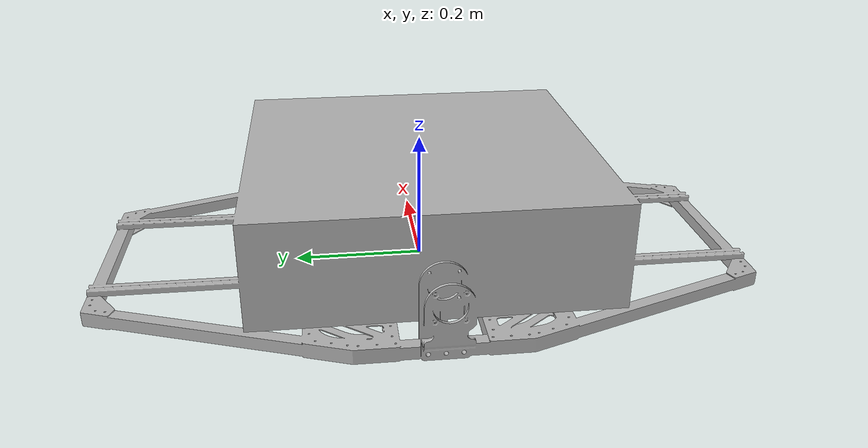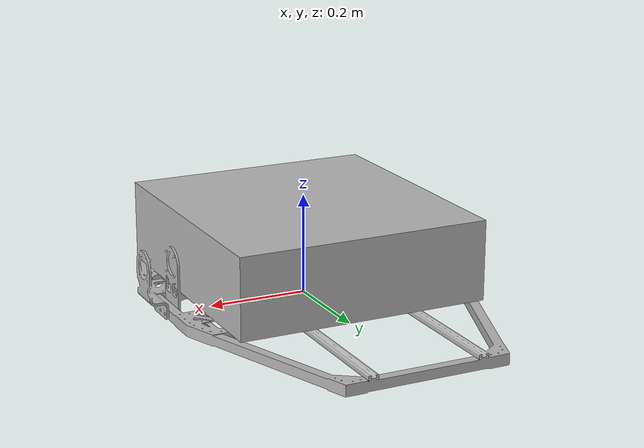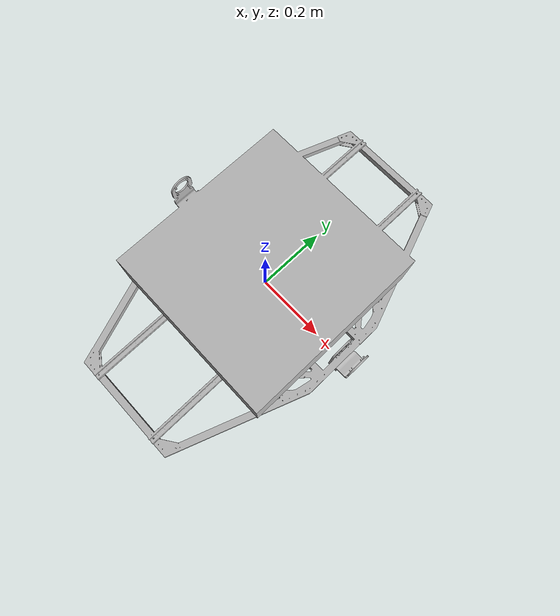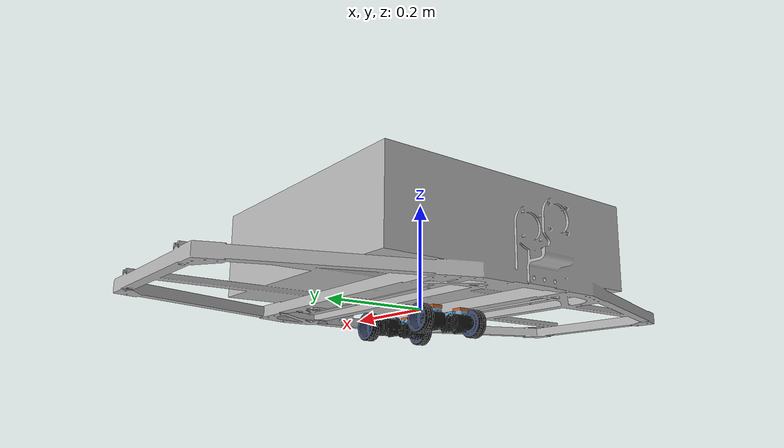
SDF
<sdf version='1.7'>
  <model name='rs_robot'>

    <link name='base_link'>
      <inertial>
        <pose>-0.003143 0 0.022 0 -0 0</pose>
        <mass>1.4</mass>
        <inertia>
          <ixx>0.0004846</ixx>
          <ixy>0</ixy>
          <ixz>0.000132</ixz>
          <iyy>0.000352971</iyy>
          <iyz>0</iyz>
          <izz>0.000339571</izz>
        </inertia>
      </inertial>
      <collision name='base_footprint_fixed_joint_lump__base_link_collision'>
        <pose>0 0 0 0 -0 0</pose>
        <geometry>
          <mesh>
            <scale>1 1 1</scale>
            <uri>model://rs_robot/meshes/STL/base/base_link.stl</uri>
          </mesh>
        </geometry>
        <surface>
          <contact>
            <ode/>
          </contact>
          <friction>
            <ode>
              <mu>0.05</mu>
              <mu2>0.05</mu2>
            </ode>
          </friction>
        </surface>
      </collision>
      <visual name='base_footprint_fixed_joint_lump__base_link_visual'>
        <pose>0 0 0 0 -0 0</pose>
        <geometry>
          <mesh>
            <scale>1 1 1</scale>
            <uri>model://rs_robot/meshes/DAE/base/base_link.dae</uri>
          </mesh>
        </geometry>
      </visual>
    </link>

    <joint name='fl_steering_joint' type='revolute'>
      <pose relative_to='base_link'>0.077 0.031 -0.004 0 -0 0</pose>
      <parent>base_link</parent>
      <child>fl_steering_link</child>
      <axis>
        <xyz>0 0 1</xyz>
        <limit>
          <lower>-2.1</lower>
          <upper>2.1</upper>
          <effort>5</effort>
          <velocity>6.28</velocity>
        </limit>
        <dynamics>
          <damping>0.005</damping>
          <friction>0.02</friction>
          <spring_reference>0</spring_reference>
          <spring_stiffness>0</spring_stiffness>
        </dynamics>
      </axis>
    </joint>
    <link name='fl_steering_link'>
      <pose relative_to='fl_steering_joint'>0 0 0 0 -0 0</pose>
      <inertial>
        <pose>0 0 -0.02 0 -0 0</pose>
        <mass>0.15</mass>
        <inertia>
          <ixx>1e-05</ixx>
          <ixy>0</ixy>
          <ixz>0</ixz>
          <iyy>1e-05</iyy>
          <iyz>0</iyz>
          <izz>4e-06</izz>
        </inertia>
      </inertial>
      <collision name='fl_steering_link_collision'>
        <pose>0 0 0 0 -0 0</pose>
        <geometry>
          <mesh>
            <scale>1 1 1</scale>
            <uri>model://rs_robot/meshes/STL/suspension/sus_link.stl</uri>
          </mesh>
        </geometry>
        <surface>
          <contact>
            <ode/>
          </contact>
          <friction>
            <ode>
              <mu>0.05</mu>
              <mu2>0.05</mu2>
            </ode>
          </friction>
        </surface>
      </collision>
      <visual name='fl_steering_link_visual'>
        <pose>0 0 0 0 -0 0</pose>
        <geometry>
          <mesh>
            <scale>1 1 1</scale>
            <uri>model://rs_robot/meshes/DAE/suspension/front_left_link.dae</uri>
          </mesh>
        </geometry>
      </visual>
      <self_collide>0</self_collide>
    </link>
    <joint name='fl_wheel_joint' type='revolute'>
      <pose relative_to='fl_steering_link'>0 0.021 -0.025 0 0 -3.14159</pose>
      <parent>fl_steering_link</parent>
      <child>fl_wheel_link</child>
      <axis>
        <xyz>0 -1 0</xyz>
        <limit>
          <effort>1.5</effort>
          <velocity>20</velocity>
          <lower>-1e+16</lower>
          <upper>1e+16</upper>
        </limit>
        <dynamics>
          <damping>0.005</damping>
          <friction>0.02</friction>
          <spring_reference>0</spring_reference>
          <spring_stiffness>0</spring_stiffness>
        </dynamics>
      </axis>
    </joint>
    <link name='fl_wheel_link'>
      <pose relative_to='fl_wheel_joint'>0 0 0 0 -0 0</pose>
      <inertial>
        <pose>0 -0.007 0 0 -0 0</pose>
        <mass>0.05</mass>
        <inertia>
          <ixx>1e-05</ixx>
          <ixy>0</ixy>
          <ixz>0</ixz>
          <iyy>1.8e-05</iyy>
          <iyz>0</iyz>
          <izz>1e-05</izz>
        </inertia>
      </inertial>
      <collision name='fl_wheel_link_collision'>
        <pose>0 0 0 0 -0 0</pose>
        <geometry>
          <mesh>
            <scale>1 1 1</scale>
            <uri>model://rs_robot/meshes/STL/wheel/robot_wheel.stl</uri>
          </mesh>
        </geometry>
      </collision>
      <visual name='fl_wheel_link_visual'>
        <pose>0 0 0 0 -0 0</pose>
        <geometry>
          <mesh>
            <scale>1 1 1</scale>
            <uri>model://rs_robot/meshes/DAE/wheel/wheel_link.dae</uri>
          </mesh>
        </geometry>
      </visual>
    </link>
    <joint name='fr_steering_joint' type='revolute'>
      <pose relative_to='base_link'>0.077 -0.031 -0.004 0 -0 0</pose>
      <parent>base_link</parent>
      <child>fr_steering_link</child>
      <axis>
        <xyz>0 0 1</xyz>
        <limit>
          <lower>-2.1</lower>
          <upper>2.1</upper>
          <effort>5</effort>
          <velocity>6.28</velocity>
        </limit>
        <dynamics>
          <damping>0.005</damping>
          <friction>0.02</friction>
          <spring_reference>0</spring_reference>
          <spring_stiffness>0</spring_stiffness>
        </dynamics>
      </axis>
    </joint>
    <link name='fr_steering_link'>
      <pose relative_to='fr_steering_joint'>0 0 0 0 -0 0</pose>
      <inertial>
        <pose>0 0 -0.02 0 -0 0</pose>
        <mass>0.15</mass>
        <inertia>
          <ixx>1e-05</ixx>
          <ixy>0</ixy>
          <ixz>0</ixz>
          <iyy>1e-05</iyy>
          <iyz>0</iyz>
          <izz>4e-06</izz>
        </inertia>
      </inertial>
      <collision name='fr_steering_link_collision'>
        <pose>0 0 0 0 -0 0</pose>
        <geometry>
          <mesh>
            <scale>1 1 1</scale>
            <uri>model://rs_robot/meshes/STL/suspension/sus_link.stl</uri>
          </mesh>
        </geometry>
        <surface>
          <contact>
            <ode/>
          </contact>
          <friction>
            <ode>
              <mu>0.05</mu>
              <mu2>0.05</mu2>
            </ode>
          </friction>
        </surface>
      </collision>
      <visual name='fr_steering_link_visual'>
        <pose>0 0 0 0 -0 0</pose>
        <geometry>
          <mesh>
            <scale>1 1 1</scale>
            <uri>model://rs_robot/meshes/DAE/suspension/front_right_link.dae</uri>
          </mesh>
        </geometry>
      </visual>
      <self_collide>0</self_collide>
    </link>
    <joint name='fr_wheel_joint' type='revolute'>
      <pose relative_to='fr_steering_link'>0 -0.021 -0.025 0 -0 0</pose>
      <parent>fr_steering_link</parent>
      <child>fr_wheel_link</child>
      <axis>
        <xyz>0 1 0</xyz>
        <limit>
          <effort>1.5</effort>
          <velocity>20</velocity>
          <lower>-1e+16</lower>
          <upper>1e+16</upper>
        </limit>
        <dynamics>
          <damping>0.005</damping>
          <friction>0.02</friction>
          <spring_reference>0</spring_reference>
          <spring_stiffness>0</spring_stiffness>
        </dynamics>
      </axis>
    </joint>
    <link name='fr_wheel_link'>
      <pose relative_to='fr_wheel_joint'>0 0 0 0 -0 0</pose>
      <inertial>
        <pose>0 -0.007 0 0 -0 0</pose>
        <mass>0.05</mass>
        <inertia>
          <ixx>1e-05</ixx>
          <ixy>0</ixy>
          <ixz>0</ixz>
          <iyy>1.8e-05</iyy>
          <iyz>0</iyz>
          <izz>1e-05</izz>
        </inertia>
      </inertial>
      <collision name='fr_wheel_link_collision'>
        <pose>0 0 0 0 -0 0</pose>
        <geometry>
          <mesh>
            <scale>1 1 1</scale>
            <uri>model://rs_robot/meshes/STL/wheel/robot_wheel.stl</uri>
          </mesh>
        </geometry>
      </collision>
      <visual name='fr_wheel_link_visual'>
        <pose>0 0 0 0 -0 0</pose>
        <geometry>
          <mesh>
            <scale>1 1 1</scale>
            <uri>model://rs_robot/meshes/DAE/wheel/wheel_link.dae</uri>
          </mesh>
        </geometry>
      </visual>
    </link>

    <joint name='rl_steering_joint' type='revolute'>
      <pose relative_to='base_link'>-0.077 0.031 -0.004 0 -0 0</pose>
      <parent>base_link</parent>
      <child>rl_steering_link</child>
      <axis>
        <xyz>0 0 1</xyz>
        <limit>
          <lower>-2.1</lower>
          <upper>2.1</upper>
          <effort>5</effort>
          <velocity>6.28</velocity>
        </limit>
        <dynamics>
          <damping>0.005</damping>
          <friction>0.02</friction>
          <spring_reference>0</spring_reference>
          <spring_stiffness>0</spring_stiffness>
        </dynamics>
      </axis>
    </joint>
    <link name='rl_steering_link'>
      <pose relative_to='rl_steering_joint'>0 0 0 0 -0 0</pose>
      <inertial>
        <pose>0 0 -0.02 0 -0 0</pose>
        <mass>0.15</mass>
        <inertia>
          <ixx>1e-05</ixx>
          <ixy>0</ixy>
          <ixz>0</ixz>
          <iyy>1e-05</iyy>
          <iyz>0</iyz>
          <izz>4e-06</izz>
        </inertia>
      </inertial>
      <collision name='rl_steering_link_collision'>
        <pose>0 0 0 0 -0 0</pose>
        <geometry>
          <mesh>
            <scale>1 1 1</scale>
            <uri>model://rs_robot/meshes/STL/suspension/sus_link.stl</uri>
          </mesh>
        </geometry>
        <surface>
          <contact>
            <ode/>
          </contact>
          <friction>
            <ode>
              <mu>0.05</mu>
              <mu2>0.05</mu2>
            </ode>
          </friction>
        </surface>
      </collision>
      <visual name='rl_steering_link_visual'>
        <pose>0 0 0 0 -0 0</pose>
        <geometry>
          <mesh>
            <scale>1 1 1</scale>
            <uri>model://rs_robot/meshes/DAE/suspension/rear_left_link.dae</uri>
          </mesh>
        </geometry>
      </visual>
      <self_collide>0</self_collide>
    </link>
    <joint name='rl_wheel_joint' type='revolute'>
      <pose relative_to='rl_steering_link'>0 0.021 -0.025 0 0 -3.14159</pose>
      <parent>rl_steering_link</parent>
      <child>rl_wheel_link</child>
      <axis>
        <xyz>0 -1 0</xyz>
        <limit>
          <effort>1.5</effort>
          <velocity>20</velocity>
          <lower>-1e+16</lower>
          <upper>1e+16</upper>
        </limit>
        <dynamics>
          <damping>0.005</damping>
          <friction>0.02</friction>
          <spring_reference>0</spring_reference>
          <spring_stiffness>0</spring_stiffness>
        </dynamics>
      </axis>
    </joint>
    <link name='rl_wheel_link'>
      <pose relative_to='rl_wheel_joint'>0 0 0 0 -0 0</pose>
      <inertial>
        <pose>0 -0.007 0 0 -0 0</pose>
        <mass>0.05</mass>
        <inertia>
          <ixx>1e-05</ixx>
          <ixy>0</ixy>
          <ixz>0</ixz>
          <iyy>1.8e-05</iyy>
          <iyz>0</iyz>
          <izz>1e-05</izz>
        </inertia>
      </inertial>
      <collision name='rl_wheel_link_collision'>
        <pose>0 0 0 0 -0 0</pose>
        <geometry>
          <mesh>
            <scale>1 1 1</scale>
            <uri>model://rs_robot/meshes/STL/wheel/robot_wheel.stl</uri>
          </mesh>
        </geometry>
      </collision>
      <visual name='rl_wheel_link_visual'>
        <pose>0 0 0 0 -0 0</pose>
        <geometry>
          <mesh>
            <scale>1 1 1</scale>
            <uri>model://rs_robot/meshes/DAE/wheel/wheel_link.dae</uri>
          </mesh>
        </geometry>
      </visual>
    </link>
    <joint name='rr_steering_joint' type='revolute'>
      <pose relative_to='base_link'>-0.077 -0.031 -0.004 0 -0 0</pose>
      <parent>base_link</parent>
      <child>rr_steering_link</child>
      <axis>
        <xyz>0 0 1</xyz>
        <limit>
          <lower>-2.1</lower>
          <upper>2.1</upper>
          <effort>5</effort>
          <velocity>6.28</velocity>
        </limit>
        <dynamics>
          <damping>0.005</damping>
          <friction>0.02</friction>
          <spring_reference>0</spring_reference>
          <spring_stiffness>0</spring_stiffness>
        </dynamics>
      </axis>
    </joint>
    <link name='rr_steering_link'>
      <pose relative_to='rr_steering_joint'>0 0 0 0 -0 0</pose>
      <inertial>
        <pose>0 0 -0.02 0 -0 0</pose>
        <mass>0.15</mass>
        <inertia>
          <ixx>1e-05</ixx>
          <ixy>0</ixy>
          <ixz>0</ixz>
          <iyy>1e-05</iyy>
          <iyz>0</iyz>
          <izz>4e-06</izz>
        </inertia>
      </inertial>
      <collision name='rr_steering_link_collision'>
        <pose>0 0 0 0 -0 0</pose>
        <geometry>
          <mesh>
            <scale>1 1 1</scale>
            <uri>model://rs_robot/meshes/STL/suspension/sus_link.stl</uri>
          </mesh>
        </geometry>
        <surface>
          <contact>
            <ode/>
          </contact>
          <friction>
            <ode>
              <mu>0.05</mu>
              <mu2>0.05</mu2>
            </ode>
          </friction>
        </surface>
      </collision>
      <visual name='rr_steering_link_visual'>
        <pose>0 0 0 0 -0 0</pose>
        <geometry>
          <mesh>
            <scale>1 1 1</scale>
            <uri>model://rs_robot/meshes/DAE/suspension/rear_right_link.dae</uri>
          </mesh>
        </geometry>
      </visual>
      <self_collide>0</self_collide>
    </link>
    <joint name='rr_wheel_joint' type='revolute'>
      <pose relative_to='rr_steering_link'>0 -0.021 -0.025 0 -0 0</pose>
      <parent>rr_steering_link</parent>
      <child>rr_wheel_link</child>
      <axis>
        <xyz>0 1 0</xyz>
        <limit>
          <effort>1.5</effort>
          <velocity>20</velocity>
          <lower>-1e+16</lower>
          <upper>1e+16</upper>
        </limit>
        <dynamics>
          <damping>0.005</damping>
          <friction>0.02</friction>
          <spring_reference>0</spring_reference>
          <spring_stiffness>0</spring_stiffness>
        </dynamics>
      </axis>
    </joint>
    <link name='rr_wheel_link'>
      <pose relative_to='rr_wheel_joint'>0 0 0 0 -0 0</pose>
      <inertial>
        <pose>0 -0.007 0 0 -0 0</pose>
        <mass>0.05</mass>
        <inertia>
          <ixx>1e-05</ixx>
          <ixy>0</ixy>
          <ixz>0</ixz>
          <iyy>1.8e-05</iyy>
          <iyz>0</iyz>
          <izz>1e-05</izz>
        </inertia>
      </inertial>
      <collision name='rr_wheel_link_collision'>
        <pose>0 0 0 0 -0 0</pose>
        <geometry>
          <mesh>
            <scale>1 1 1</scale>
            <uri>model://rs_robot/meshes/STL/wheel/robot_wheel.stl</uri>
          </mesh>
        </geometry>
      </collision>
      <visual name='rr_wheel_link_visual'>
        <pose>0 0 0 0 -0 0</pose>
        <geometry>
          <mesh>
            <scale>1 1 1</scale>
            <uri>model://rs_robot/meshes/DAE/wheel/wheel_link.dae</uri>
          </mesh>
        </geometry>
      </visual>
    </link>

    <static>0</static>

    <plugin name="four_ws_robot_joint_state" filename="libgazebo_ros_joint_state_publisher.so">
      <ros>
          <remapping>~/out:=joint_states</remapping>
      </ros>
      <update_rate>30</update_rate>
      <joint_name>fl_wheel_joint</joint_name>
      <joint_name>fr_wheel_joint</joint_name>
      <joint_name>rl_wheel_joint</joint_name>
      <joint_name>rr_wheel_joint</joint_name>
      <joint_name>fl_steering_joint</joint_name>
      <joint_name>fr_steering_joint</joint_name>
      <joint_name>rl_steering_joint</joint_name>
      <joint_name>rr_steering_joint</joint_name>
    </plugin>

<ros2_control name="GazeboSystem" type="system">
    <hardware>
      <plugin>gazebo_ros2_control/GazeboSystem</plugin>
    </hardware>

    <joint name="fl_wheel_joint">
      <command_interface name="velocity">
        <param name="min">-3.14</param>
        <param name="max">3.14</param>
      </command_interface>
      <state_interface name="velocity"/>
      <state_interface name="effort"/>
    </joint>

    <joint name="fr_wheel_joint">
      <command_interface name="velocity">
        <param name="min">-3.14</param>
        <param name="max">3.14</param>
      </command_interface>
      <state_interface name="velocity"/>
      <state_interface name="effort"/>
    </joint>

    <joint name="rl_wheel_joint">
      <command_interface name="velocity">
        <param name="min">-3.14</param>
        <param name="max">3.14</param>
      </command_interface>
      <state_interface name="velocity"/>
      <state_interface name="effort"/>
    </joint>

    <joint name="rr_wheel_joint">
      <command_interface name="velocity">
        <param name="min">-3.14</param>
        <param name="max">3.14</param>
      </command_interface>
      <state_interface name="velocity"/>
      <state_interface name="effort"/>
    </joint>

    <joint name="fl_steering_joint">
      <command_interface name="position">
        <param name="min">-3.14</param>
        <param name="max">3.14</param>
      </command_interface>
      <state_interface name="position">
        <param name="initial_value">0</param>
      </state_interface>
      <state_interface name="velocity"/>
      <state_interface name="effort"/>
    </joint>

    <joint name="fr_steering_joint">
      <command_interface name="position">
        <param name="min">-3.14</param>
        <param name="max">3.14</param>
      </command_interface>
      <state_interface name="position">
        <param name="initial_value">0</param>
      </state_interface>
      <state_interface name="velocity"/>
      <state_interface name="effort"/>
    </joint>

    <joint name="rl_steering_joint">
      <command_interface name="position">
        <param name="min">-3.14</param>
        <param name="max">3.14</param>
      </command_interface>
      <state_interface name="position">
        <param name="initial_value">0</param>
      </state_interface>
      <state_interface name="velocity"/>
      <state_interface name="effort"/>
    </joint>

    <joint name="rr_steering_joint">
      <command_interface name="position">
        <param name="min">-3.14</param>
        <param name="max">3.14</param>
      </command_interface>
      <state_interface name="position">
        <param name="initial_value">0</param>
      </state_interface>
      <state_interface name="velocity"/>
      <state_interface name="effort"/>
    </joint>
  </ros2_control>

    <plugin name="gazebo_ros2_control" filename="libgazebo_ros2_control.so">
      <parameters>/home/robotmania/four_ws_ros2/install/gazebo_simulation/share/gazebo_simulation/models/rs_robot/config/controllers.yaml</parameters>
    </plugin>

  </model>
</sdf>
